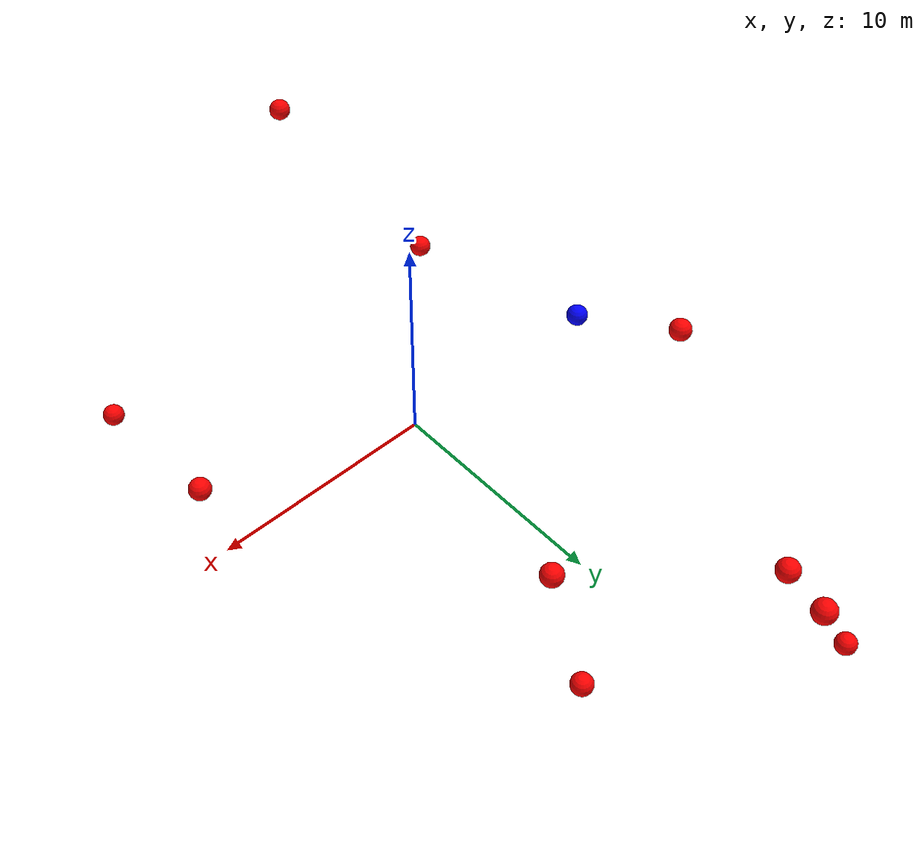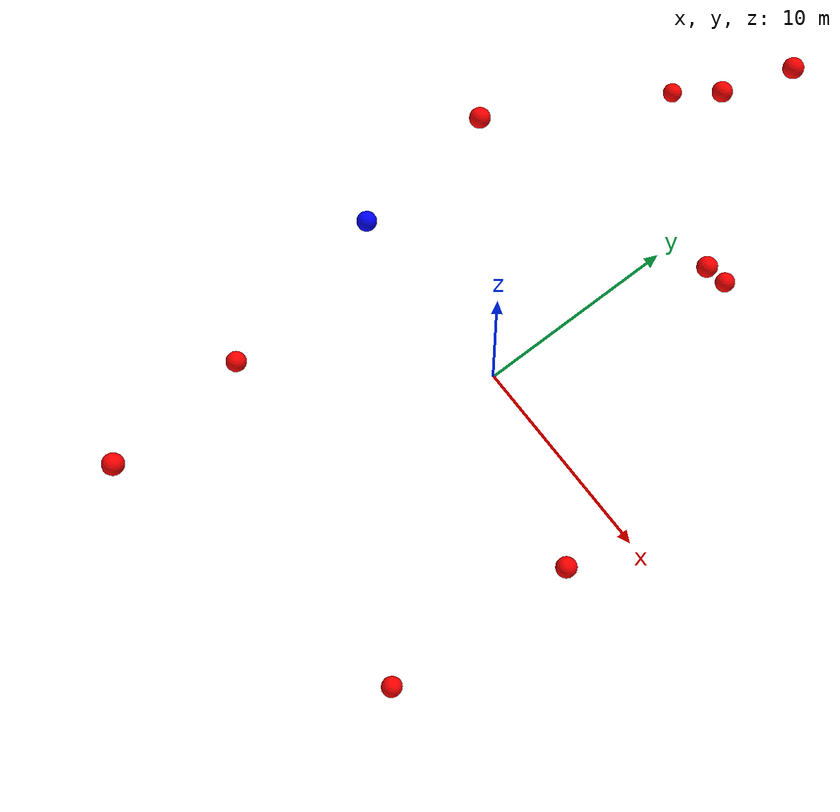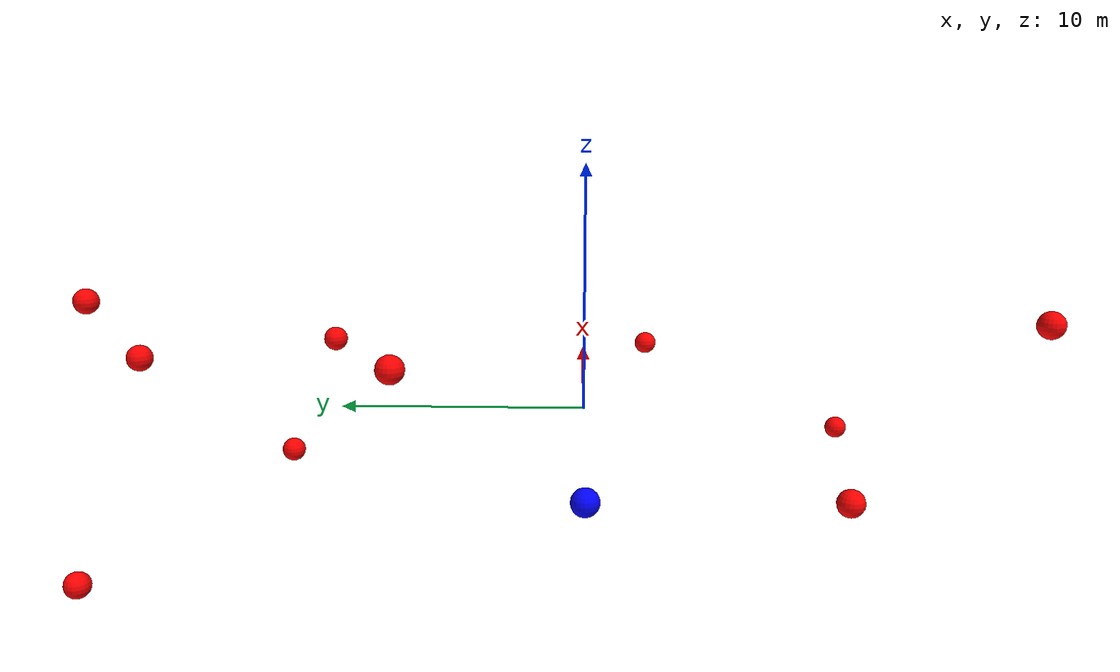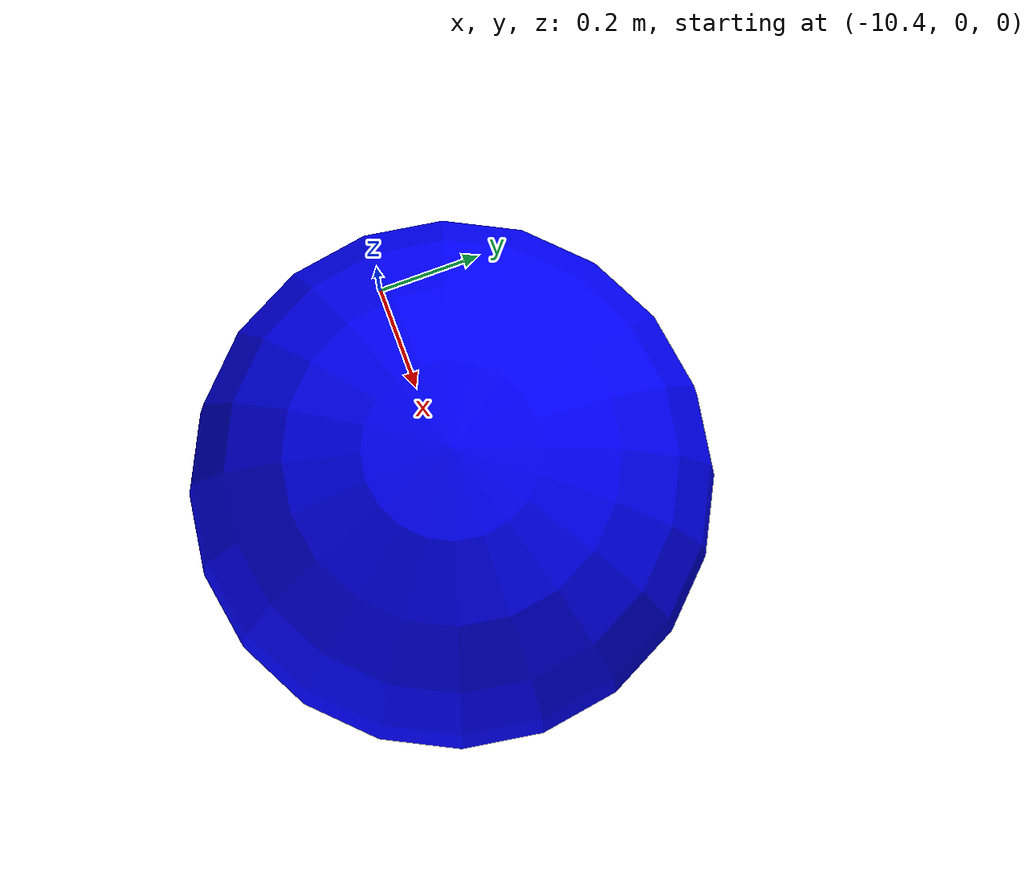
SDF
<?xml version="1.0" ?>
<sdf version="1.8">
    <world name="3d_world">
        <physics name="1ms" type="ode">
            <max_step_size>0.001</max_step_size>
            <real_time_factor>1.0</real_time_factor>
            <real_time_update_rate>1000.0</real_time_update_rate>
        </physics>
        <gravity>0 0 0</gravity>

        <plugin
            filename="gz-sim-physics-system"
            name="gz::sim::v8::systems::Physics">
        </plugin>
        <plugin
            filename="libignition-gazebo-user-commands-system.so"
            name="ignition::gazebo::systems::UserCommands">
        </plugin>
        <plugin
            filename="gz-sim-scene-broadcaster-system"
            name="gz::sim::systems::SceneBroadcaster">
        </plugin>
        <plugin
            filename="gz-sim-sensors-system"
            name="gz::sim::systems::Sensors">
            <render_engine>ogre2</render_engine>
        </plugin>

        <light type="directional" name="sun">
            <cast_shadows>true</cast_shadows>
            <pose>0 0 10 0 0 0</pose>
            <diffuse>0.8 0.8 0.8 1</diffuse>
            <specular>0.2 0.2 0.2 1</specular>
            <attenuation>
                <range>1000</range>
                <constant>0.9</constant>
                <linear>0.01</linear>
                <quadratic>0.001</quadratic>
            </attenuation>
            <direction>-0.5 0.1 -0.9</direction>
        </light>

        <!-- AGENTE -->
        <model name='agente' canonical_link='chassis'>
            <pose relative_to='world'>-10.0 0 0.0 0 0 0</pose>
            <link name='chassis'>
                <pose relative_to='__model__'>0.0 0 0.0 0 0 0</pose>
                <inertial>
                    <mass>1.14395</mass>
                    <inertia>
                        <ixx>0.095329</ixx>
                        <ixy>0</ixy>
                        <ixz>0</ixz>
                        <iyy>0.381317</iyy>
                        <iyz>0</iyz>
                        <izz>0.476646</izz>
                    </inertia>
                </inertial>
                <visual name='visual'>
                    <geometry>
                        <sphere>
                            <radius>0.5</radius>
                        </sphere>
                    </geometry>
                    <material>
                        <ambient>0.0 0.0 1.0 1</ambient>
                        <diffuse>0.0 0.0 1.0 1</diffuse>
                        <specular>0.0 0.0 1.0 1</specular>
                    </material>
                </visual>
                <collision name='collision'>
                    <geometry>
                        <sphere>
                            <radius>0.5</radius>
                        </sphere>
                    </geometry>
                </collision>
                <enable_gravity>false</enable_gravity>
            </link>

            <link name='lidar_link'>
                <pose relative_to='chassis'>0.0 0 0.1 0 0 0</pose>
                <inertial>
                    <mass>0.1</mass>
                    <inertia>
                        <ixx>0.000166667</ixx>
                        <iyy>0.000166667</iyy>
                        <izz>0.000166667</izz>
                    </inertia>
                </inertial>
                <collision name='collision'>
                    <geometry>
                        <cylinder>
                            <radius>0.05</radius>
                            <length>0.1</length>
                        </cylinder>
                    </geometry>
                </collision>
                <visual name='visual'>
                    <geometry>
                        <cylinder>
                            <radius>0.05</radius>
                            <length>0.1</length>
                        </cylinder>
                    </geometry>
                    <material>
                        <ambient>0.0 1.0 0.0 1</ambient>
                        <diffuse>0.0 1.0 0.0 1</diffuse>
                        <specular>0.0 1.0 0.0 1</specular>
                    </material>
                </visual>
                <sensor name="lidar" type="gpu_lidar">
                    <topic>scan</topic>
                    <update_rate>10</update_rate>
                    <lidar>
                        <scan>
                            <horizontal>
                                <samples>5000</samples>
                                <resolution>1</resolution>
                                <min_angle>-3.14159</min_angle>
                                <max_angle>3.14159</max_angle>
                            </horizontal>
                        </scan>
                        <range>
                            <min>0.1</min>
                            <max>10.0</max>
                            <resolution>0.01</resolution>
                        </range>
                    </lidar>
                    <visualize>true</visualize>
                    <always_on>true</always_on>
                    <update_rate>10</update_rate>
                    <pose_frame>lidar</pose_frame>
                </sensor>
                <enable_gravity>false</enable_gravity>
            </link>

            <joint name="lidar_joint" type="fixed">
                <parent>chassis</parent>
                <child>lidar_link</child>
            </joint>

            <plugin
                filename="ignition-gazebo-joint-state-publisher-system"
                name="ignition::gazebo::systems::JointStatePublisher">
            </plugin>
            <plugin
                filename="ignition-gazebo-odometry-publisher-system"
                name="ignition::gazebo::systems::OdometryPublisher">
                <dimensions>3</dimensions>
            </plugin>
            <plugin
                filename="ignition-gazebo-velocity-control-system"
                name="ignition::gazebo::systems::VelocityControl">
                <initial_linear>0.0 0 0</initial_linear>
                <initial_angular>0 0 0.0</initial_angular>
            </plugin>
            <plugin
                filename="libignition-gazebo-pose-publisher-system.so"
                name="ignition::gazebo::systems::PosePublisher">
                <topic>/agente/pose</topic>
                <frame_id>agente</frame_id>
                <update_rate>30</update_rate>
            </plugin>
        </model>

        <!-- OBSTACLE 1 -->
        <model name='obstacle_1' canonical_link='obstacle'>
            <static>false</static>
            <pose relative_to='world'>2.40 10.65 2.27 0 0 0</pose>
            <link name='obstacle'>
                <pose relative_to='__model__'>0.0 0 0.0 0 0 0</pose>
                <visual name='visual'>
                    <geometry>
                        <sphere>
                            <radius>0.50</radius>
                        </sphere>
                    </geometry>
                    <material>
                        <ambient>1.0 0.0 0.0 1</ambient>
                        <diffuse>1.0 0.0 0.0 1</diffuse>
                        <specular>1.0 0.0 0.0 1</specular>
                    </material>
                </visual>
                <collision name='collision'>
                    <geometry>
                        <sphere>
                            <radius>0.50</radius>
                        </sphere>
                    </geometry>
                </collision>
                <enable_gravity>false</enable_gravity>
            </link>

            <plugin
                filename="ignition-gazebo-velocity-control-system"
                name="ignition::gazebo::systems::VelocityControl">
                <initial_linear>-0.38 -1.92 -0.41</initial_linear>
                <initial_angular>0 0 0</initial_angular>
            </plugin>

            <plugin
                filename="ignition-gazebo-odometry-publisher-system"
                name="ignition::gazebo::systems::OdometryPublisher">
                <dimensions>3</dimensions>
            </plugin>
        </model>

        <!-- OBSTACLE 2 -->
        <model name='obstacle_2' canonical_link='obstacle'>
            <static>false</static>
            <pose relative_to='world'>9.14 -3.02 0.44 0 0 0</pose>
            <link name='obstacle'>
                <pose relative_to='__model__'>0.0 0 0.0 0 0 0</pose>
                <visual name='visual'>
                    <geometry>
                        <sphere>
                            <radius>0.50</radius>
                        </sphere>
                    </geometry>
                    <material>
                        <ambient>1.0 0.0 0.0 1</ambient>
                        <diffuse>1.0 0.0 0.0 1</diffuse>
                        <specular>1.0 0.0 0.0 1</specular>
                    </material>
                </visual>
                <collision name='collision'>
                    <geometry>
                        <sphere>
                            <radius>0.50</radius>
                        </sphere>
                    </geometry>
                </collision>
                <enable_gravity>false</enable_gravity>
            </link>

            <plugin
                filename="ignition-gazebo-velocity-control-system"
                name="ignition::gazebo::systems::VelocityControl">
                <initial_linear>-1.94 0.47 -0.07</initial_linear>
                <initial_angular>0 0 0</initial_angular>
            </plugin>

            <plugin
                filename="ignition-gazebo-odometry-publisher-system"
                name="ignition::gazebo::systems::OdometryPublisher">
                <dimensions>3</dimensions>
            </plugin>
        </model>

        <!-- OBSTACLE 3 -->
        <model name='obstacle_3' canonical_link='obstacle'>
            <static>false</static>
            <pose relative_to='world'>-9.31 6.38 4.26 0 0 0</pose>
            <link name='obstacle'>
                <pose relative_to='__model__'>0.0 0 0.0 0 0 0</pose>
                <visual name='visual'>
                    <geometry>
                        <sphere>
                            <radius>0.50</radius>
                        </sphere>
                    </geometry>
                    <material>
                        <ambient>1.0 0.0 0.0 1</ambient>
                        <diffuse>1.0 0.0 0.0 1</diffuse>
                        <specular>1.0 0.0 0.0 1</specular>
                    </material>
                </visual>
                <collision name='collision'>
                    <geometry>
                        <sphere>
                            <radius>0.50</radius>
                        </sphere>
                    </geometry>
                </collision>
                <enable_gravity>false</enable_gravity>
            </link>

            <plugin
                filename="ignition-gazebo-velocity-control-system"
                name="ignition::gazebo::systems::VelocityControl">
                <initial_linear>1.78 -0.76 -0.51</initial_linear>
                <initial_angular>0 0 0</initial_angular>
            </plugin>

            <plugin
                filename="ignition-gazebo-odometry-publisher-system"
                name="ignition::gazebo::systems::OdometryPublisher">
                <dimensions>3</dimensions>
            </plugin>
        </model>

        <!-- OBSTACLE 4 -->
        <model name='obstacle_4' canonical_link='obstacle'>
            <static>false</static>
            <pose relative_to='world'>8.14 -12.26 -3.47 0 0 0</pose>
            <link name='obstacle'>
                <pose relative_to='__model__'>0.0 0 0.0 0 0 0</pose>
                <visual name='visual'>
                    <geometry>
                        <sphere>
                            <radius>0.50</radius>
                        </sphere>
                    </geometry>
                    <material>
                        <ambient>1.0 0.0 0.0 1</ambient>
                        <diffuse>1.0 0.0 0.0 1</diffuse>
                        <specular>1.0 0.0 0.0 1</specular>
                    </material>
                </visual>
                <collision name='collision'>
                    <geometry>
                        <sphere>
                            <radius>0.50</radius>
                        </sphere>
                    </geometry>
                </collision>
                <enable_gravity>false</enable_gravity>
            </link>

            <plugin
                filename="ignition-gazebo-velocity-control-system"
                name="ignition::gazebo::systems::VelocityControl">
                <initial_linear>-0.90 1.72 0.49</initial_linear>
                <initial_angular>0 0 0</initial_angular>
            </plugin>

            <plugin
                filename="ignition-gazebo-odometry-publisher-system"
                name="ignition::gazebo::systems::OdometryPublisher">
                <dimensions>3</dimensions>
            </plugin>
        </model>

        <!-- OBSTACLE 5 -->
        <model name='obstacle_5' canonical_link='obstacle'>
            <static>false</static>
            <pose relative_to='world'>-7.73 18.24 -4.37 0 0 0</pose>
            <link name='obstacle'>
                <pose relative_to='__model__'>0.0 0 0.0 0 0 0</pose>
                <visual name='visual'>
                    <geometry>
                        <sphere>
                            <radius>0.50</radius>
                        </sphere>
                    </geometry>
                    <material>
                        <ambient>1.0 0.0 0.0 1</ambient>
                        <diffuse>1.0 0.0 0.0 1</diffuse>
                        <specular>1.0 0.0 0.0 1</specular>
                    </material>
                </visual>
                <collision name='collision'>
                    <geometry>
                        <sphere>
                            <radius>0.50</radius>
                        </sphere>
                    </geometry>
                </collision>
                <enable_gravity>false</enable_gravity>
            </link>

            <plugin
                filename="ignition-gazebo-velocity-control-system"
                name="ignition::gazebo::systems::VelocityControl">
                <initial_linear>0.52 -1.88 0.45</initial_linear>
                <initial_angular>0 0 0</initial_angular>
            </plugin>

            <plugin
                filename="ignition-gazebo-odometry-publisher-system"
                name="ignition::gazebo::systems::OdometryPublisher">
                <dimensions>3</dimensions>
            </plugin>
        </model>

        <!-- OBSTACLE 6 -->
        <model name='obstacle_6' canonical_link='obstacle'>
            <static>false</static>
            <pose relative_to='world'>-8.23 -9.08 -0.66 0 0 0</pose>
            <link name='obstacle'>
                <pose relative_to='__model__'>0.0 0 0.0 0 0 0</pose>
                <visual name='visual'>
                    <geometry>
                        <sphere>
                            <radius>0.50</radius>
                        </sphere>
                    </geometry>
                    <material>
                        <ambient>1.0 0.0 0.0 1</ambient>
                        <diffuse>1.0 0.0 0.0 1</diffuse>
                        <specular>1.0 0.0 0.0 1</specular>
                    </material>
                </visual>
                <collision name='collision'>
                    <geometry>
                        <sphere>
                            <radius>0.50</radius>
                        </sphere>
                    </geometry>
                </collision>
                <enable_gravity>false</enable_gravity>
            </link>

            <plugin
                filename="ignition-gazebo-velocity-control-system"
                name="ignition::gazebo::systems::VelocityControl">
                <initial_linear>1.66 1.11 0.08</initial_linear>
                <initial_angular>0 0 0</initial_angular>
            </plugin>

            <plugin
                filename="ignition-gazebo-odometry-publisher-system"
                name="ignition::gazebo::systems::OdometryPublisher">
                <dimensions>3</dimensions>
            </plugin>
        </model>

        <!-- OBSTACLE 7 -->
        <model name='obstacle_7' canonical_link='obstacle'>
            <static>false</static>
            <pose relative_to='world'>-3.82 16.76 3.06 0 0 0</pose>
            <link name='obstacle'>
                <pose relative_to='__model__'>0.0 0 0.0 0 0 0</pose>
                <visual name='visual'>
                    <geometry>
                        <sphere>
                            <radius>0.50</radius>
                        </sphere>
                    </geometry>
                    <material>
                        <ambient>1.0 0.0 0.0 1</ambient>
                        <diffuse>1.0 0.0 0.0 1</diffuse>
                        <specular>1.0 0.0 0.0 1</specular>
                    </material>
                </visual>
                <collision name='collision'>
                    <geometry>
                        <sphere>
                            <radius>0.50</radius>
                        </sphere>
                    </geometry>
                </collision>
                <enable_gravity>false</enable_gravity>
            </link>

            <plugin
                filename="ignition-gazebo-velocity-control-system"
                name="ignition::gazebo::systems::VelocityControl">
                <initial_linear>1.04 -1.68 -0.31</initial_linear>
                <initial_angular>0 0 0</initial_angular>
            </plugin>

            <plugin
                filename="ignition-gazebo-odometry-publisher-system"
                name="ignition::gazebo::systems::OdometryPublisher">
                <dimensions>3</dimensions>
            </plugin>
        </model>

        <!-- OBSTACLE 8 -->
        <model name='obstacle_8' canonical_link='obstacle'>
            <static>false</static>
            <pose relative_to='world'>-2.17 19.31 4.86 0 0 0</pose>
            <link name='obstacle'>
                <pose relative_to='__model__'>0.0 0 0.0 0 0 0</pose>
                <visual name='visual'>
                    <geometry>
                        <sphere>
                            <radius>0.50</radius>
                        </sphere>
                    </geometry>
                    <material>
                        <ambient>1.0 0.0 0.0 1</ambient>
                        <diffuse>1.0 0.0 0.0 1</diffuse>
                        <specular>1.0 0.0 0.0 1</specular>
                    </material>
                </visual>
                <collision name='collision'>
                    <geometry>
                        <sphere>
                            <radius>0.50</radius>
                        </sphere>
                    </geometry>
                </collision>
                <enable_gravity>false</enable_gravity>
            </link>

            <plugin
                filename="ignition-gazebo-velocity-control-system"
                name="ignition::gazebo::systems::VelocityControl">
                <initial_linear>0.82 -1.77 -0.45</initial_linear>
                <initial_angular>0 0 0</initial_angular>
            </plugin>

            <plugin
                filename="ignition-gazebo-odometry-publisher-system"
                name="ignition::gazebo::systems::OdometryPublisher">
                <dimensions>3</dimensions>
            </plugin>
        </model>

        <!-- OBSTACLE 9 -->
        <model name='obstacle_9' canonical_link='obstacle'>
            <static>false</static>
            <pose relative_to='world'>-5.61 -16.23 5.00 0 0 0</pose>
            <link name='obstacle'>
                <pose relative_to='__model__'>0.0 0 0.0 0 0 0</pose>
                <visual name='visual'>
                    <geometry>
                        <sphere>
                            <radius>0.50</radius>
                        </sphere>
                    </geometry>
                    <material>
                        <ambient>1.0 0.0 0.0 1</ambient>
                        <diffuse>1.0 0.0 0.0 1</diffuse>
                        <specular>1.0 0.0 0.0 1</specular>
                    </material>
                </visual>
                <collision name='collision'>
                    <geometry>
                        <sphere>
                            <radius>0.50</radius>
                        </sphere>
                    </geometry>
                </collision>
                <enable_gravity>false</enable_gravity>
            </link>

            <plugin
                filename="ignition-gazebo-velocity-control-system"
                name="ignition::gazebo::systems::VelocityControl">
                <initial_linear>0.68 1.80 -0.55</initial_linear>
                <initial_angular>0 0 0</initial_angular>
            </plugin>

            <plugin
                filename="ignition-gazebo-odometry-publisher-system"
                name="ignition::gazebo::systems::OdometryPublisher">
                <dimensions>3</dimensions>
            </plugin>
        </model>

        <!-- OBSTACLE 10 -->
        <model name='obstacle_10' canonical_link='obstacle'>
            <static>false</static>
            <pose relative_to='world'>2.50 12.77 -2.82 0 0 0</pose>
            <link name='obstacle'>
                <pose relative_to='__model__'>0.0 0 0.0 0 0 0</pose>
                <visual name='visual'>
                    <geometry>
                        <sphere>
                            <radius>0.50</radius>
                        </sphere>
                    </geometry>
                    <material>
                        <ambient>1.0 0.0 0.0 1</ambient>
                        <diffuse>1.0 0.0 0.0 1</diffuse>
                        <specular>1.0 0.0 0.0 1</specular>
                    </material>
                </visual>
                <collision name='collision'>
                    <geometry>
                        <sphere>
                            <radius>0.50</radius>
                        </sphere>
                    </geometry>
                </collision>
                <enable_gravity>false</enable_gravity>
            </link>

            <plugin
                filename="ignition-gazebo-velocity-control-system"
                name="ignition::gazebo::systems::VelocityControl">
                <initial_linear>-0.56 -1.87 0.41</initial_linear>
                <initial_angular>0 0 0</initial_angular>
            </plugin>

            <plugin
                filename="ignition-gazebo-odometry-publisher-system"
                name="ignition::gazebo::systems::OdometryPublisher">
                <dimensions>3</dimensions>
            </plugin>
        </model>

    </world>
</sdf>
